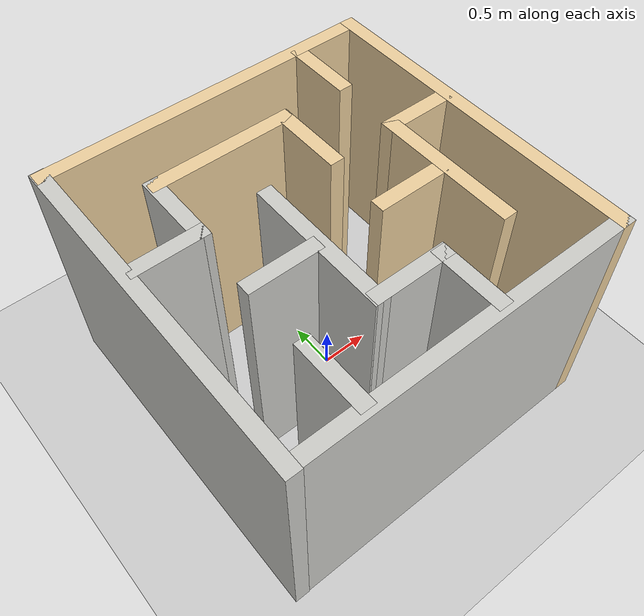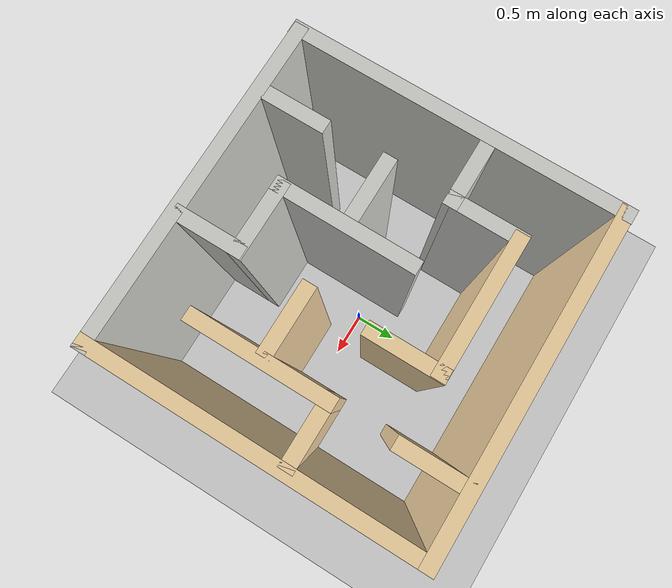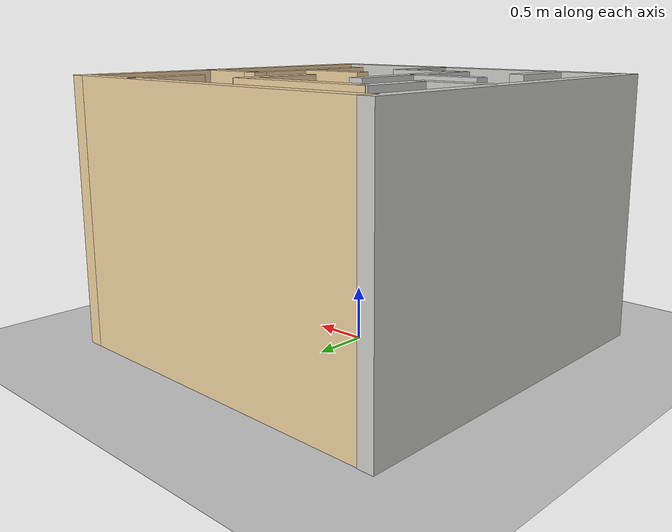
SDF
<sdf version="1.7">
 <world name="maze">
  <light name="sun" type="directional">
   <pose>0 0 10 0 -0 0</pose>
   <diffuse>0.8 0.8 0.8 1</diffuse>
   <specular>0.2 0.2 0.2 1</specular>
   <attenuation>
    <range>1000</range>
    <constant>0.9</constant>
    <linear>0.01</linear>
    <quadratic>0.001</quadratic>
   </attenuation>
   <direction>-0.5 0.1 -0.9</direction>
   <spot><inner_angle>0</inner_angle><outer_angle>0</outer_angle><falloff>0</falloff></spot>
  </light>
  <model name="ground_plane">
   <static>1</static>
   <link name="link">
    <collision name="collision">
     <geometry><plane><normal>0 0 1</normal><size>100 100</size></plane></geometry>
     <surface><friction><ode><mu>100</mu><mu2>50</mu2></ode></friction></surface>
    </collision>
    <visual name="visual">
     <cast_shadows>0</cast_shadows>
     <geometry><plane><normal>0 0 1</normal><size>100 100</size></plane></geometry>
     <material>
      <script><uri>file://media/materials/scripts/gazebo.material</uri><name>Gazebo/Grey</name></script>
     </material>
    </visual>
   </link>
  </model>
  <gravity>0 0 -9.8</gravity>
  <magnetic_field>6e-06 2.3e-05 -4.2e-05</magnetic_field>
  <atmosphere type="adiabatic"/>
  <physics type="ode">
   <max_step_size>0.001</max_step_size>
   <real_time_factor>1</real_time_factor>
   <real_time_update_rate>1000</real_time_update_rate>
  </physics>
  <scene><ambient>0.4 0.4 0.4 1</ambient><background>0.7 0.7 0.7 1</background><shadows>1</shadows></scene>
  <audio><device>default</device></audio>
  <spherical_coordinates>
   <surface_model>EARTH_WGS84</surface_model>
   <latitude_deg>0</latitude_deg>
   <longitude_deg>0</longitude_deg>
   <elevation>0</elevation>
   <heading_deg>0</heading_deg>
  </spherical_coordinates>
  <model name="Second_Map">
   <pose>-0.011178 0.009491 0 0 -0 0</pose>
   <link name="Wall_1">
    <collision name="Wall_1_Collision">
     <geometry><box><size>3.56909 0.15 2.5</size></box></geometry>
     <pose>0 0 1.25 0 -0 0</pose>
    </collision>
    <visual name="Wall_1_Visual">
     <pose>0 0 1.25 0 -0 0</pose>
     <geometry><box><size>3.56909 0.15 2.5</size></box></geometry>
     <material>
      <script><uri>file://media/materials/scripts/gazebo.material</uri><name>Gazebo/Grey</name></script>
      <ambient>0.921569 0.807843 0.615686 1</ambient>
     </material>
     <meta><layer>0</layer></meta>
    </visual>
    <pose>0.005716 1.70668 0 0 -0 0</pose>
   </link>
   <link name="Wall_10">
    <collision name="Wall_10_Collision">
     <geometry><box><size>0.819188 0.15 2.5</size></box></geometry>
     <pose>0 0 1.25 0 -0 0</pose>
    </collision>
    <visual name="Wall_10_Visual">
     <pose>0 0 1.25 0 -0 0</pose>
     <geometry><box><size>0.819188 0.15 2.5</size></box></geometry>
     <material>
      <script><uri>file://media/materials/scripts/gazebo.material</uri><name>Gazebo/CeilingTiled</name></script>
      <ambient>0.921569 0.807843 0.615686 1</ambient>
     </material>
     <meta><layer>0</layer></meta>
    </visual>
    <pose>-1.02284 0.680496 0 0 -0 -1.57258</pose>
   </link>
   <link name="Wall_14">
    <collision name="Wall_14_Collision">
     <geometry><box><size>1.49586 0.15 2.5</size></box></geometry>
     <pose>0 0 1.25 0 -0 0</pose>
    </collision>
    <visual name="Wall_14_Visual">
     <pose>0 0 1.25 0 -0 0</pose>
     <geometry><box><size>1.49586 0.15 2.5</size></box></geometry>
     <material>
      <script><uri>file://media/materials/scripts/gazebo.material</uri><name>Gazebo/Grey</name></script>
      <ambient>0.921569 0.807843 0.615686 1</ambient>
     </material>
     <meta><layer>0</layer></meta>
    </visual>
    <pose>-0.330522 1.01884 0 0 -0 3.14159</pose>
   </link>
   <link name="Wall_18">
    <collision name="Wall_18_Collision">
     <geometry><box><size>0.826697 0.15 2.5</size></box></geometry>
     <pose>0 0 1.25 0 -0 0</pose>
    </collision>
    <visual name="Wall_18_Visual">
     <pose>0 0 1.25 0 -0 0</pose>
     <geometry><box><size>0.826697 0.15 2.5</size></box></geometry>
     <material>
      <script><uri>file://media/materials/scripts/gazebo.material</uri><name>Gazebo/Grey</name></script>
      <ambient>0.921569 0.807843 0.615686 1</ambient>
     </material>
     <meta><layer>0</layer></meta>
    </visual>
    <pose>0.349924 0.676737 0 0 -0 1.5708</pose>
   </link>
   <link name="Wall_2">
    <collision name="Wall_2_Collision">
     <geometry><box><size>3.56337 0.15 2.5</size></box></geometry>
     <pose>0 0 1.25 0 -0 0</pose>
    </collision>
    <visual name="Wall_2_Visual">
     <pose>0 0 1.25 0 -0 0</pose>
     <geometry><box><size>3.56337 0.15 2.5</size></box></geometry>
     <material>
      <script><uri>file://media/materials/scripts/gazebo.material</uri><name>Gazebo/Grey</name></script>
      <ambient>0.921569 0.807843 0.615686 1</ambient>
     </material>
     <meta><layer>0</layer></meta>
    </visual>
    <pose>1.71526 -0 0 0 -0 -1.5708</pose>
   </link>
   <link name="Wall_20">
    <collision name="Wall_20_Collision">
     <geometry><box><size>0.75 0.15 2.5</size></box></geometry>
     <pose>0 0 1.25 0 -0 0</pose>
    </collision>
    <visual name="Wall_20_Visual">
     <pose>0 0 1.25 0 -0 0</pose>
     <geometry><box><size>0.75 0.15 2.5</size></box></geometry>
     <material>
      <script><uri>file://media/materials/scripts/gazebo.material</uri><name>Gazebo/Grey</name></script>
      <ambient>0.921569 0.807843 0.615686 1</ambient>
     </material>
     <meta><layer>0</layer></meta>
    </visual>
    <pose>1.03879 1.3446 0 0 -0 1.5708</pose>
   </link>
   <link name="Wall_24">
    <collision name="Wall_24_Collision">
     <geometry><box><size>0.740627 0.15 2.5</size></box></geometry>
     <pose>0 0 1.25 0 -0 0</pose>
    </collision>
    <visual name="Wall_24_Visual">
     <pose>0 0 1.25 0 -0 0</pose>
     <geometry><box><size>0.740627 0.15 2.5</size></box></geometry>
     <material>
      <script><uri>file://media/materials/scripts/gazebo.material</uri><name>Gazebo/Grey</name></script>
      <ambient>0.921569 0.807843 0.615686 1</ambient>
     </material>
     <meta><layer>0</layer></meta>
    </visual>
    <pose>1.33626 0.322389 0 0 -0 0</pose>
   </link>
   <link name="Wall_26">
    <collision name="Wall_26_Collision">
     <geometry><box><size>1.50697 0.15 2.5</size></box></geometry>
     <pose>0 0 1.25 0 -0 0</pose>
    </collision>
    <visual name="Wall_26_Visual">
     <pose>0 0 1.25 0 -0 0</pose>
     <geometry><box><size>1.50697 0.15 2.5</size></box></geometry>
     <material>
      <script><uri>file://media/materials/scripts/gazebo.material</uri><name>Gazebo/Grey</name></script>
      <ambient>0.921569 0.807843 0.615686 1</ambient>
     </material>
     <meta><layer>0</layer></meta>
    </visual>
    <pose>1.04095 -0.356084 0 0 -0 1.5708</pose>
   </link>
   <link name="Wall_28">
    <collision name="Wall_28_Collision">
     <geometry><box><size>0.75 0.15 2.5</size></box></geometry>
     <pose>0 0 1.25 0 -0 0</pose>
    </collision>
    <visual name="Wall_28_Visual">
     <pose>0 0 1.25 0 -0 0</pose>
     <geometry><box><size>0.75 0.15 2.5</size></box></geometry>
     <material>
      <script><uri>file://media/materials/scripts/gazebo.material</uri><name>Gazebo/Grey</name></script>
      <ambient>0.921569 0.807843 0.615686 1</ambient>
     </material>
     <meta><layer>0</layer></meta>
    </visual>
    <pose>0.641916 -0.339262 0 0 -0 0</pose>
   </link>
   <link name="Wall_3">
    <collision name="Wall_3_Collision">
     <geometry><box><size>3.55765 0.15 2.5</size></box></geometry>
     <pose>0 0 1.25 0 -0 0</pose>
    </collision>
    <visual name="Wall_3_Visual">
     <pose>0 0 1.25 0 -0 0</pose>
     <geometry><box><size>3.55765 0.15 2.5</size></box></geometry>
     <material>
      <script><uri>file://media/materials/scripts/gazebo.material</uri><name>Gazebo/CeilingTiled</name></script>
      <ambient>0.921569 0.807843 0.615686 1</ambient>
     </material>
     <meta><layer>0</layer></meta>
    </visual>
    <pose>0.011434 -1.70668 0 0 -0 3.14159</pose>
   </link>
   <link name="Wall_31">
    <collision name="Wall_31_Collision">
     <geometry><box><size>0.75 0.15 2.5</size></box></geometry>
     <pose>0 0 1.25 0 -0 0</pose>
    </collision>
    <visual name="Wall_31_Visual">
     <pose>0 0 1.25 0 -0 0</pose>
     <geometry><box><size>0.75 0.15 2.5</size></box></geometry>
     <material>
      <script><uri>file://media/materials/scripts/gazebo.material</uri><name>Gazebo/CeilingTiled</name></script>
      <ambient>0.921569 0.807843 0.615686 1</ambient>
     </material>
     <meta><layer>0</layer></meta>
    </visual>
    <pose>-1.02387 -1.35072 0 0 -0 -1.5708</pose>
   </link>
   <link name="Wall_34">
    <collision name="Wall_34_Collision">
     <geometry><box><size>0.75 0.15 2.5</size></box></geometry>
     <pose>0 0 1.25 0 -0 0</pose>
    </collision>
    <visual name="Wall_34_Visual">
     <pose>0 0 1.25 0 -0 0</pose>
     <geometry><box><size>0.75 0.15 2.5</size></box></geometry>
     <material>
      <script><uri>file://media/materials/scripts/gazebo.material</uri><name>Gazebo/CeilingTiled</name></script>
      <ambient>0.921569 0.807843 0.615686 1</ambient>
     </material>
     <meta><layer>0</layer></meta>
    </visual>
    <pose>0.343168 -1.34642 0 0 -0 -1.5708</pose>
   </link>
   <link name="Wall_36">
    <collision name="Wall_36_Collision">
     <geometry><box><size>0.816338 0.15 2.5</size></box></geometry>
     <pose>0 0 1.25 0 -0 0</pose>
    </collision>
    <visual name="Wall_36_Visual">
     <pose>0 0 1.25 0 -0 0</pose>
     <geometry><box><size>0.816338 0.15 2.5</size></box></geometry>
     <material>
      <script><uri>file://media/materials/scripts/gazebo.material</uri><name>Gazebo/CeilingTiled</name></script>
      <ambient>0.921569 0.807843 0.615686 1</ambient>
     </material>
     <meta><layer>0</layer></meta>
    </visual>
    <pose>0.010006 -1.03352 0 0 -0 0</pose>
   </link>
   <link name="Wall_38">
    <collision name="Wall_38_Collision">
     <geometry><box><size>1.51274 0.15 2.5</size></box></geometry>
     <pose>0 0 1.25 0 -0 0</pose>
    </collision>
    <visual name="Wall_38_Visual">
     <pose>0 0 1.25 0 -0 0</pose>
     <geometry><box><size>1.51274 0.15 2.5</size></box></geometry>
     <material>
      <script><uri>file://media/materials/scripts/gazebo.material</uri><name>Gazebo/CeilingTiled</name></script>
      <ambient>0.921569 0.807843 0.615686 1</ambient>
     </material>
     <meta><layer>0</layer></meta>
    </visual>
    <pose>-0.338202 -0.352153 0 0 -0 -1.57395</pose>
   </link>
   <link name="Wall_40">
    <collision name="Wall_40_Collision">
     <geometry><box><size>0.75 0.15 2.5</size></box></geometry>
     <pose>0 0 1.25 0 -0 0</pose>
    </collision>
    <visual name="Wall_40_Visual">
     <pose>0 0 1.25 0 -0 0</pose>
     <geometry><box><size>0.75 0.15 2.5</size></box></geometry>
     <material>
      <script><uri>file://media/materials/scripts/gazebo.material</uri><name>Gazebo/CeilingTiled</name></script>
      <ambient>0.921569 0.807843 0.615686 1</ambient>
     </material>
     <meta><layer>0</layer></meta>
    </visual>
    <pose>-0.715273 -0.341405 0 0 -0 0</pose>
   </link>
   <link name="Wall_6">
    <collision name="Wall_6_Collision">
     <geometry><box><size>3.5748 0.15 2.5</size></box></geometry>
     <pose>0 0 1.25 0 -0 0</pose>
    </collision>
    <visual name="Wall_6_Visual">
     <pose>0 0 1.25 0 -0 0</pose>
     <geometry><box><size>3.5748 0.15 2.5</size></box></geometry>
     <material>
      <script><uri>file://media/materials/scripts/gazebo.material</uri><name>Gazebo/CeilingTiled</name></script>
      <ambient>0.921569 0.807843 0.615686 1</ambient>
     </material>
     <meta><layer>0</layer></meta>
    </visual>
    <pose>-1.71526 -0 0 0 -0 -1.5708</pose>
   </link>
   <link name="Wall_8">
    <collision name="Wall_8_Collision">
     <geometry><box><size>0.75 0.15 2.5</size></box></geometry>
     <pose>0 0 1.25 0 -0 0</pose>
    </collision>
    <visual name="Wall_8_Visual">
     <pose>0 0 1.25 0 -0 0</pose>
     <geometry><box><size>0.75 0.15 2.5</size></box></geometry>
     <material>
      <script><uri>file://media/materials/scripts/gazebo.material</uri><name>Gazebo/CeilingTiled</name></script>
      <ambient>0.921569 0.807843 0.615686 1</ambient>
     </material>
     <meta><layer>0</layer></meta>
    </visual>
    <pose>-1.32344 0.345911 0 0 -0 3.14159</pose>
   </link>
   <static>1</static>
  </model>
 </world>
</sdf>
